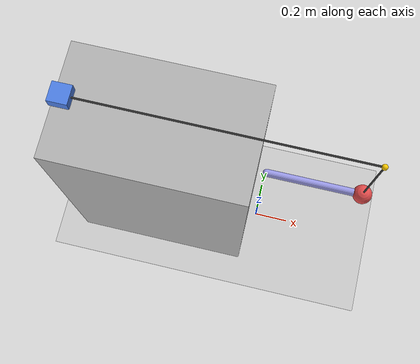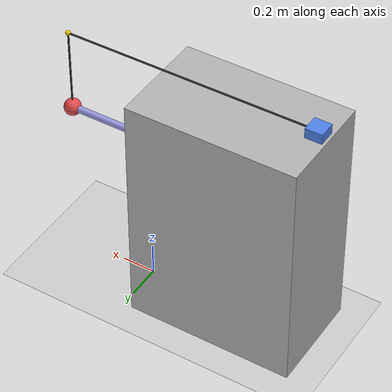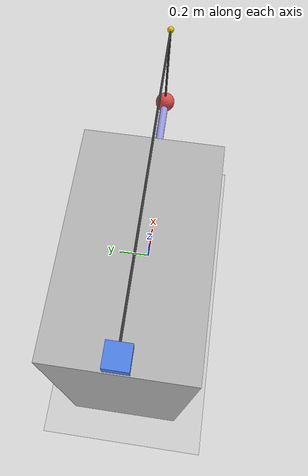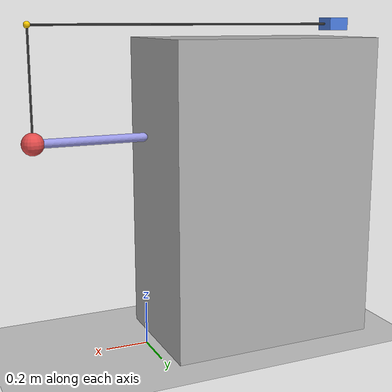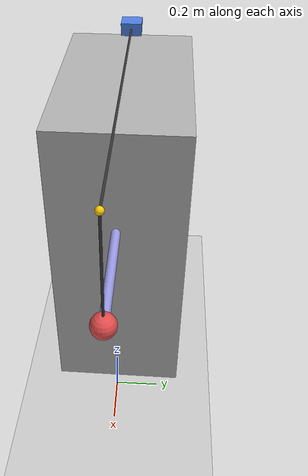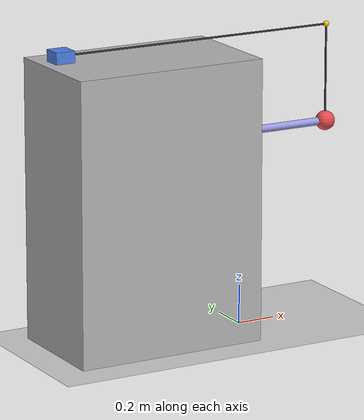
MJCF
<mujoco model="tendon_capstone">

  <option timestep="0.001" gravity="0 0 -9.81"/>

  <worldbody>
    <light pos="0.5 -1 2" dir="0 0.5 -1"/>
    <geom name="floor" type="plane" size="2 2 0.1" rgba="0.8 0.8 0.8 1"/>

    <!-- Wall with corner pulley above the pendulum pivot -->
    <body name="wall">
      <geom name="wall" type="box" size="0.5 0.3 0.72" pos="-0.55 0 0.72"
            rgba="0.7 0.7 0.7 1"/>
      <site name="corner_pulley" pos="0.5 0 1.5" size="0.015" rgba="1 0.8 0 1"/>
    </body>

    <!-- Sliding block on ceiling rail -->
    <body name="block" pos="-1 0 1.5">
      <joint name="block_slide" type="slide" axis="1 0 0"
             range="-1.0 0.5" damping="0.5" armature="0.01"/>
      <geom name="block" type="box" size="0.05 0.05 0.03" mass="0.5"
            rgba="0.3 0.5 0.9 1"/>
      <site name="block_anchor" pos="0 0 0" size="0.01"/>
    </body>

    <!-- Pendulum: same geometry as pendulum.xml -->
    <body name="link" pos="0 0 1">
      <joint name="hinge" type="hinge" axis="0 1 0"
             range="-86 86" damping="0.05"/>
      <geom name="rod" type="capsule" fromto="0 0 0 0.5 0 0"
            size="0.02" mass="0.001" rgba="0.6 0.6 0.9 1"/>
      <geom name="tip_mass" type="sphere" pos="0.5 0 0"
            size="0.05" mass="1.0" rgba="0.9 0.3 0.3 1"/>
      <site name="tip" pos="0.5 0 0" size="0.01"/>
    </body>
  </worldbody>

  <tendon>
    <!-- Tension-only cable: block -> corner pulley -> pendulum tip.
         springlength deadband [0, L_natural]: zero force when slack, pulls when taut. -->
    <spatial name="cable" stiffness="200" springlength="0 2.0"
             width="0.005" rgba="0.2 0.2 0.2 1">
      <site site="block_anchor"/>
      <site site="corner_pulley"/>
      <site site="tip"/>
    </spatial>
  </tendon>

  <actuator>
    <motor name="block_motor" joint="block_slide" gear="1" ctrlrange="-100 100"/>
    <motor name="hinge_motor" joint="hinge" gear="1" ctrlrange="-10 10"/>
  </actuator>
</mujoco>
